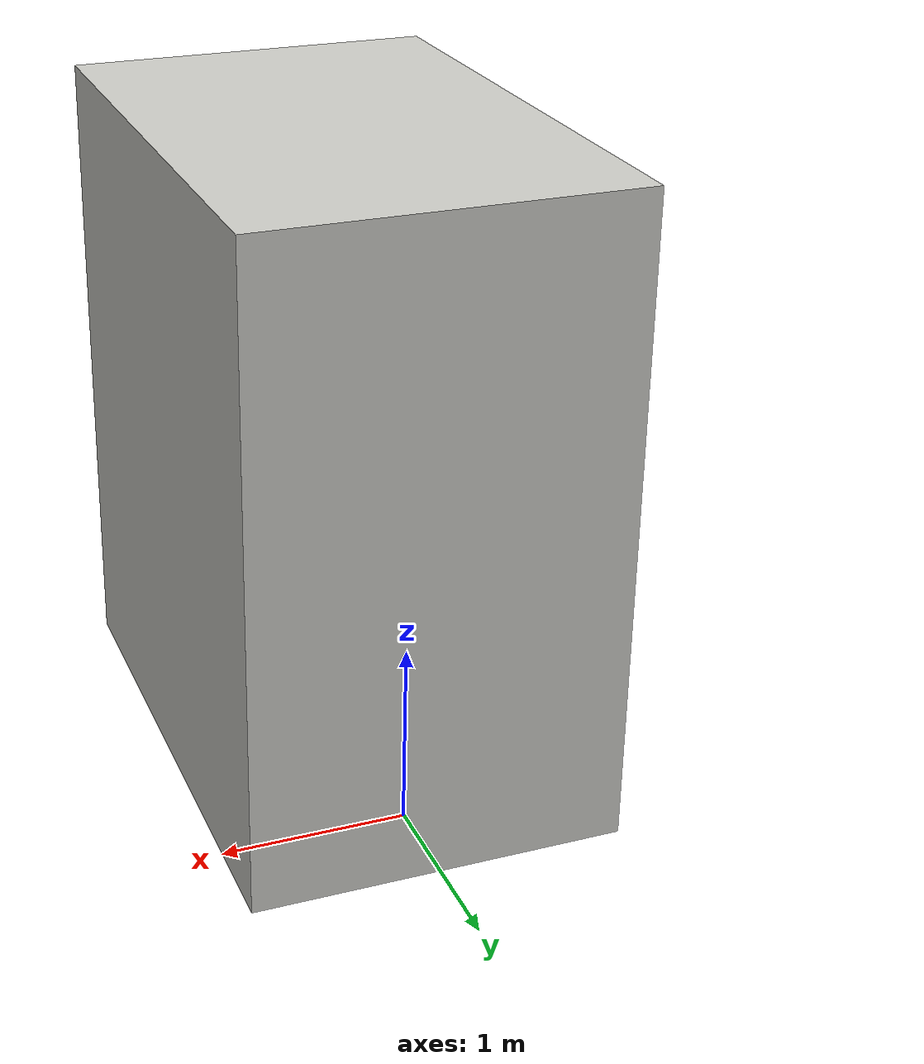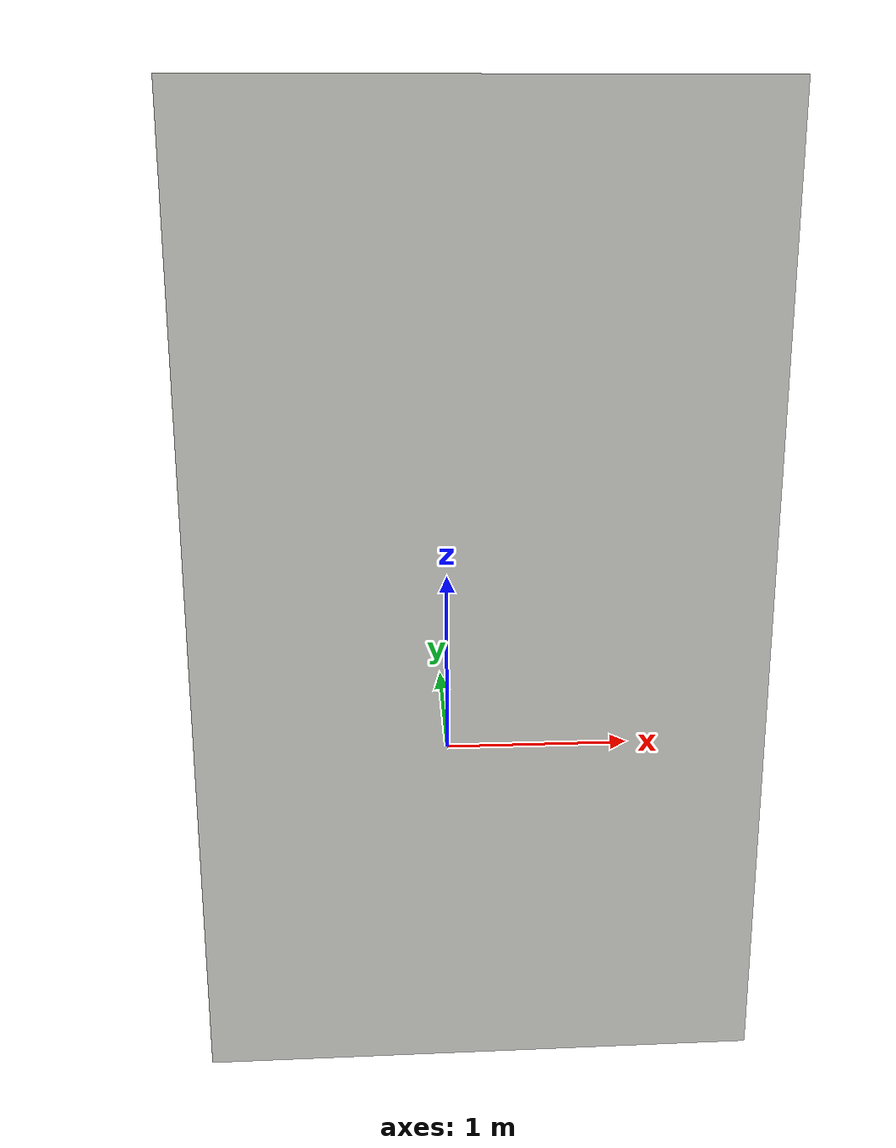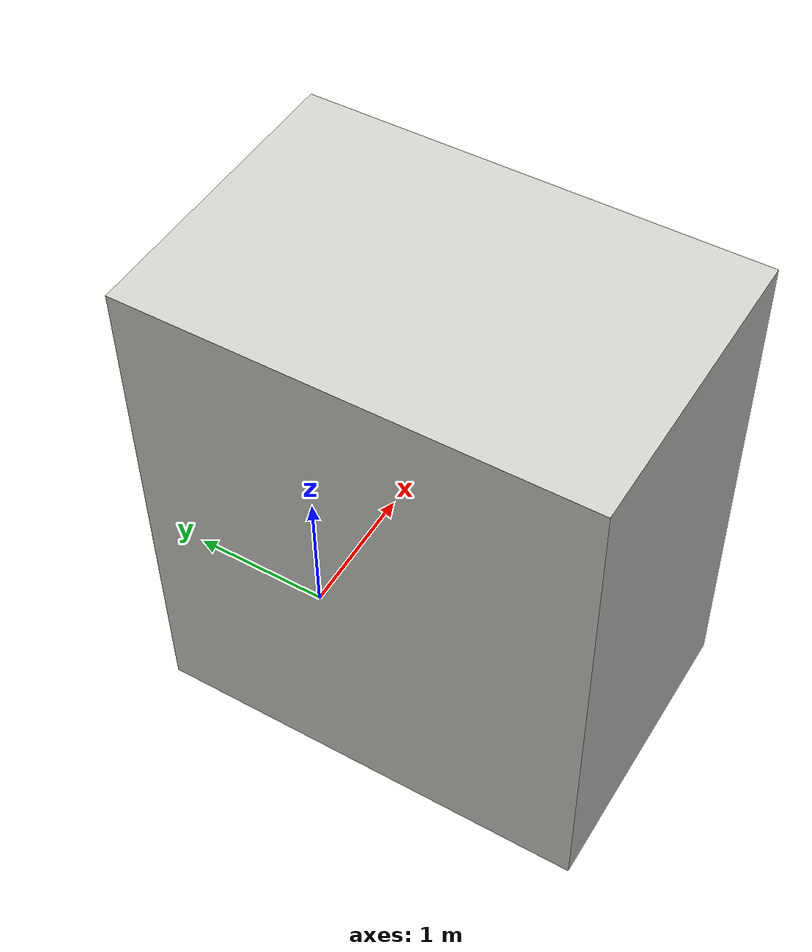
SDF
<?xml version='1.0'?>
<sdf version='1.7'>
  <model name='box3_2_3.5'>
    <pose>0 -1 0 0 -0 0</pose>
    <link name='Wall_7'>
      <collision name='Wall_7_Collision'>
        <geometry>
          <box>
            <size>3 2 3.5</size>
          </box>
        </geometry>
        <pose>0 0 1.75 0 -0 0</pose>
      </collision>
      <visual name='Wall_7_Visual'>
        <pose>0 0 1.75 0 -0 0</pose>
        <geometry>
          <box>
            <size>3 2 3.5</size>
          </box>
        </geometry>
        <material>
          <script>
            <uri>file://media/materials/scripts/gazebo.material</uri>
            <name>Gazebo/CeilingTiled</name>
          </script>
          <ambient>0.921569 0.807843 0.615686 1</ambient>
        </material>
        <meta>
          <layer>0</layer>
        </meta>
      </visual>
      <pose>0 0 0 0 -0 1.5708</pose>
    </link>
    <static>1</static>
  </model>
</sdf>
